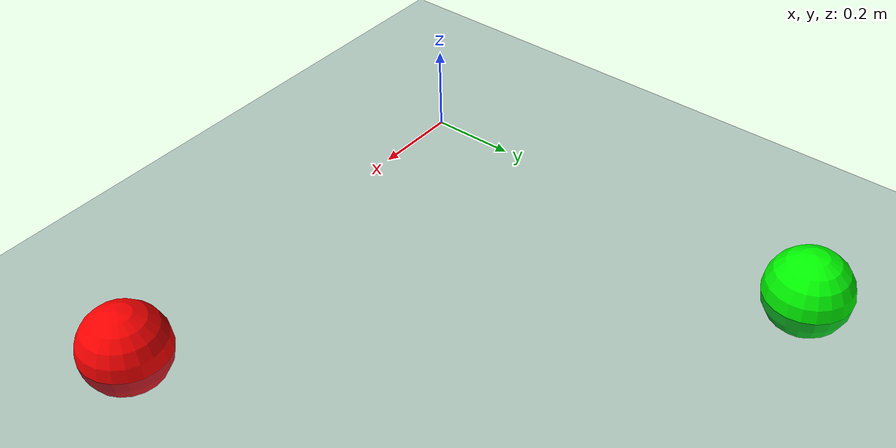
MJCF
<mujoco model="point_mass">
    <option timestep="0.01" />
    <option gravity="0 0 -9.81"/>
    <asset>
        <texture type="skybox" builtin="gradient" rgb1="0.3 0.5 0.7" rgb2="0 0 0" width="512" height="3072"/>
        <texture type="2d" name="groundplane" builtin="checker" mark="edge" rgb1="0.2 0.3 0.4" rgb2="0.1 0.2 0.3" markrgb="0.8 0.8 0.8" width="300" height="300"/>
        <material name="groundplane" texture="groundplane" texuniform="true" texrepeat="5 5" reflectance="0.2"/>
    </asset>
    <worldbody>
        <body name="robot 1" pos="0 1 0" >
            <joint name="joint_x_robot1" type="slide" axis="1 0 0"/>  <!-- Translational joint along x-axis -->
            <joint name="joint_y_robot1" type="slide" axis="0 1 0"/>  <!-- Translational joint along y-axis -->
            <joint name="joint_z_robot1" type="slide" axis="0 0 1"/>  <!-- Translational joint along z-axis -->
            <geom type="sphere" size="0.1" mass="0.1" rgba="0.0 255.0 0.0 1.0"/> <!-- Visual representation -->
        </body>
        <body name="robot 2" pos="1 0 0" >
            <joint name="joint_x_robot2" type="slide" axis="1 0 0"/>  <!-- Translational joint along x-axis -->
            <joint name="joint_y_robot2" type="slide" axis="0 1 0"/>  <!-- Translational joint along y-axis -->
            <joint name="joint_z_robot2" type="slide" axis="0 0 1"/>  <!-- Translational joint along z-axis -->
            <geom type="sphere" size="0.1" mass="0.1" rgba="255.0 0.0 0.0 1.0"/> <!-- Visual representation -->
        </body>
        <light pos="0 0 1.5" dir="0 0 -1" directional="true"/>
        <geom name="floor" size="0 0 0.05" type="plane" material="groundplane"/>
    </worldbody>
    <actuator>
        <motor joint="joint_x_robot1" ctrlrange="-10 10" ctrllimited="true"/>
        <motor joint="joint_y_robot1" ctrlrange="-10 10" ctrllimited="true"/>
        <motor joint="joint_z_robot1" ctrlrange="-10 10" ctrllimited="true"/>
        <motor joint="joint_x_robot2" ctrlrange="-10 10" ctrllimited="true"/>
        <motor joint="joint_y_robot2" ctrlrange="-10 10" ctrllimited="true"/>
        <motor joint="joint_z_robot2" ctrlrange="-10 10" ctrllimited="true"/>
    </actuator>
</mujoco>
